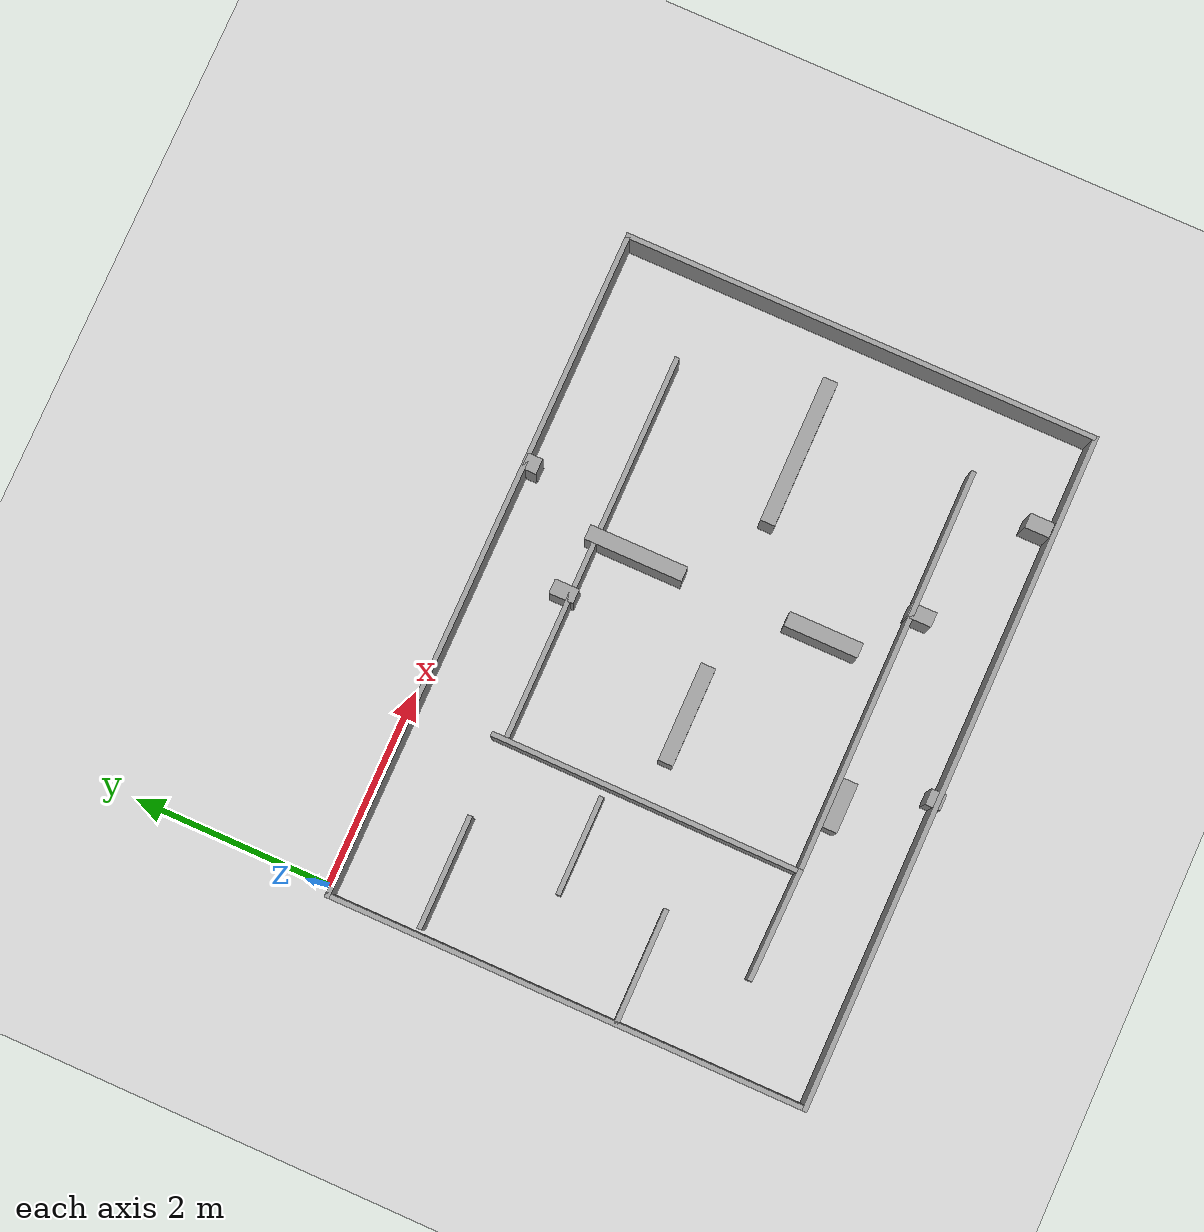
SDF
<sdf version="1.6">
 <world name="default">
  <light name="sun" type="directional">
   <pose>0 0 10 0 -0 0</pose>
   <diffuse>0.8 0.8 0.8 1</diffuse>
   <specular>0.2 0.2 0.2 1</specular>
   <attenuation>
    <range>1000</range>
    <constant>0.9</constant>
    <linear>0.01</linear>
    <quadratic>0.001</quadratic>
   </attenuation>
   <direction>-0.5 0.1 -0.9</direction>
  </light>
  <model name="ground_plane">
   <static>1</static>
   <link name="link">
    <collision name="collision">
     <geometry><plane><normal>0 0 1</normal><size>100 100</size></plane></geometry>
     <surface><friction><ode><mu>100</mu><mu2>50</mu2></ode></friction></surface>
    </collision>
    <visual name="visual">
     <cast_shadows>0</cast_shadows>
     <geometry><plane><normal>0 0 1</normal><size>100 100</size></plane></geometry>
     <material>
      <script><uri>file://media/materials/scripts/gazebo.material</uri><name>Gazebo/Grey</name></script>
     </material>
    </visual>
   </link>
  </model>
  <gravity>0 0 -9.8</gravity>
  <magnetic_field>6e-06 2.3e-05 -4.2e-05</magnetic_field>
  <atmosphere type="adiabatic"/>
  <physics name="default_physics" default="0" type="ode">
   <max_step_size>0.001</max_step_size>
   <real_time_factor>1</real_time_factor>
   <real_time_update_rate>1000</real_time_update_rate>
  </physics>
  <scene><ambient>0.4 0.4 0.4 1</ambient><background>0.7 0.7 0.7 1</background><shadows>1</shadows></scene>
  <spherical_coordinates>
   <surface_model>EARTH_WGS84</surface_model>
   <latitude_deg>0</latitude_deg>
   <longitude_deg>0</longitude_deg>
   <elevation>0</elevation>
   <heading_deg>0</heading_deg>
  </spherical_coordinates>
  <model name="new_nav">
   <pose>3.3495 -2.50747 0 0 -0 0</pose>
   <link name="Wall_0">
    <collision name="Wall_0_Collision">
     <geometry><box><size>4.85977 0.05 0.5</size></box></geometry>
     <pose>0 0 0.25 0 -0 0</pose>
    </collision>
    <visual name="Wall_0_Visual">
     <pose>0 0 0.25 0 -0 0</pose>
     <geometry><box><size>4.85977 0.05 0.5</size></box></geometry>
     <material>
      <script><uri>file://media/materials/scripts/gazebo.material</uri><name>Gazebo/Grey</name></script>
      <ambient>1 1 1 1</ambient>
     </material>
     <meta><layer>0</layer></meta>
    </visual>
    <pose>-3.4295 0.024586 0 0 0 -1.5708</pose>
   </link>
   <link name="Wall_10">
    <collision name="Wall_10_Collision">
     <geometry><box><size>1 0.05 0.5</size></box></geometry>
     <pose>0 0 0.25 0 -0 0</pose>
    </collision>
    <visual name="Wall_10_Visual">
     <pose>0 0 0.25 0 -0 0</pose>
     <geometry><box><size>1 0.05 0.5</size></box></geometry>
     <material>
      <script><uri>file://media/materials/scripts/gazebo.material</uri><name>Gazebo/Grey</name></script>
      <ambient>1 1 1 1</ambient>
     </material>
     <meta><layer>0</layer></meta>
    </visual>
    <pose>-2.06089 0.477386 0 0 -0 3.14159</pose>
   </link>
   <link name="Wall_12">
    <collision name="Wall_12_Collision">
     <geometry><box><size>1.15046 0.05 0.5</size></box></geometry>
     <pose>0 0 0.25 0 -0 0</pose>
    </collision>
    <visual name="Wall_12_Visual">
     <pose>0 0 0.25 0 -0 0</pose>
     <geometry><box><size>1.15046 0.05 0.5</size></box></geometry>
     <material>
      <script><uri>file://media/materials/scripts/gazebo.material</uri><name>Gazebo/Grey</name></script>
      <ambient>1 1 1 1</ambient>
     </material>
     <meta><layer>0</layer></meta>
    </visual>
    <pose>-2.8455 -0.496527 0 0 -0 0</pose>
   </link>
   <link name="Wall_14">
    <collision name="Wall_14_Collision">
     <geometry><box><size>1.13722 0.05 0.5</size></box></geometry>
     <pose>0 0 0.25 0 -0 0</pose>
    </collision>
    <visual name="Wall_14_Visual">
     <pose>0 0 0.25 0 -0 0</pose>
     <geometry><box><size>1.13722 0.05 0.5</size></box></geometry>
     <material>
      <script><uri>file://media/materials/scripts/gazebo.material</uri><name>Gazebo/Grey</name></script>
      <ambient>1 1 1 1</ambient>
     </material>
     <meta><layer>0</layer></meta>
    </visual>
    <pose>-1.996 -1.47653 0 0 -0 3.12136</pose>
   </link>
   <link name="Wall_16">
    <collision name="Wall_16_Collision">
     <geometry><box><size>4.14977 0.05 0.5</size></box></geometry>
     <pose>0 0 0.25 0 -0 0</pose>
    </collision>
    <visual name="Wall_16_Visual">
     <pose>0 0 0.25 0 -0 0</pose>
     <geometry><box><size>4.14977 0.05 0.5</size></box></geometry>
     <material>
      <script><uri>file://media/materials/scripts/gazebo.material</uri><name>Gazebo/Grey</name></script>
      <ambient>1 1 1 1</ambient>
     </material>
     <meta><layer>0</layer></meta>
    </visual>
    <pose>0.597503 -1.48753 0 0 -0 0</pose>
   </link>
   <link name="Wall_18">
    <collision name="Wall_18_Collision">
     <geometry><box><size>0.16 0.15 0.5</size></box></geometry>
     <pose>0 0 0.25 0 -0 0</pose>
    </collision>
    <visual name="Wall_18_Visual">
     <pose>0 0 0.25 0 -0 0</pose>
     <geometry><box><size>0.16 0.15 0.5</size></box></geometry>
     <material>
      <script><uri>file://media/materials/scripts/gazebo.material</uri><name>Gazebo/Grey</name></script>
      <ambient>1 1 1 1</ambient>
     </material>
     <meta><layer>0</layer></meta>
    </visual>
    <pose>-0.325497 -2.37953 0 0 -0 0</pose>
   </link>
   <link name="Wall_2">
    <collision name="Wall_2_Collision">
     <geometry><box><size>6.90872 0.05 0.5</size></box></geometry>
     <pose>0 0 0.25 0 -0 0</pose>
    </collision>
    <visual name="Wall_2_Visual">
     <pose>0 0 0.25 0 -0 0</pose>
     <geometry><box><size>6.90872 0.05 0.5</size></box></geometry>
     <material>
      <script><uri>file://media/materials/scripts/gazebo.material</uri><name>Gazebo/Grey</name></script>
      <ambient>1 1 1 1</ambient>
     </material>
     <meta><layer>0</layer></meta>
    </visual>
    <pose>-0.000149 -2.40781 0 0 0 -0.002155</pose>
   </link>
   <link name="Wall_21">
    <collision name="Wall_21_Collision">
     <geometry><box><size>0.25 0.15 0.5</size></box></geometry>
     <pose>0 0 0.25 0 -0 0</pose>
    </collision>
    <visual name="Wall_21_Visual">
     <pose>0 0 0.25 0 -0 0</pose>
     <geometry><box><size>0.25 0.15 0.5</size></box></geometry>
     <material>
      <script><uri>file://media/materials/scripts/gazebo.material</uri><name>Gazebo/Grey</name></script>
      <ambient>1 1 1 1</ambient>
     </material>
     <meta><layer>0</layer></meta>
    </visual>
    <pose>1.2175 -1.57553 0 0 -0 1.5708</pose>
   </link>
   <link name="Wall_23">
    <collision name="Wall_23_Collision">
     <geometry><box><size>0.25 0.15 0.5</size></box></geometry>
     <pose>0 0 0.25 0 -0 0</pose>
    </collision>
    <visual name="Wall_23_Visual">
     <pose>0 0 0.25 0 -0 0</pose>
     <geometry><box><size>0.25 0.15 0.5</size></box></geometry>
     <material>
      <script><uri>file://media/materials/scripts/gazebo.material</uri><name>Gazebo/Grey</name></script>
      <ambient>1 1 1 1</ambient>
     </material>
     <meta><layer>0</layer></meta>
    </visual>
    <pose>2.4475 -2.25753 0 0 0 -1.5708</pose>
   </link>
   <link name="Wall_27">
    <collision name="Wall_27_Collision">
     <geometry><box><size>0.5 0.15 0.5</size></box></geometry>
     <pose>0 0 0.25 0 -0 0</pose>
    </collision>
    <visual name="Wall_27_Visual">
     <pose>0 0 0.25 0 -0 0</pose>
     <geometry><box><size>0.5 0.15 0.5</size></box></geometry>
     <material>
      <script><uri>file://media/materials/scripts/gazebo.material</uri><name>Gazebo/Grey</name></script>
      <ambient>1 1 1 1</ambient>
     </material>
     <meta><layer>0</layer></meta>
    </visual>
    <pose>-0.737497 -1.58553 0 0 -0 0</pose>
   </link>
   <link name="Wall_3">
    <collision name="Wall_3_Collision">
     <geometry><box><size>4.85956 0.05 0.5</size></box></geometry>
     <pose>0 0 0.25 0 -0 0</pose>
    </collision>
    <visual name="Wall_3_Visual">
     <pose>0 0 0.25 0 -0 0</pose>
     <geometry><box><size>4.85956 0.05 0.5</size></box></geometry>
     <material>
      <script><uri>file://media/materials/scripts/gazebo.material</uri><name>Gazebo/Grey</name></script>
      <ambient>1 1 1 1</ambient>
     </material>
     <meta><layer>0</layer></meta>
    </visual>
    <pose>3.42935 0.009695 0 0 -0 1.57073</pose>
   </link>
   <link name="Wall_30">
    <collision name="Wall_30_Collision">
     <geometry><box><size>4 0.05 0.5</size></box></geometry>
     <pose>0 0 0.25 0 -0 0</pose>
    </collision>
    <visual name="Wall_30_Visual">
     <pose>0 0 0.25 0 -0 0</pose>
     <geometry><box><size>4 0.05 0.5</size></box></geometry>
     <material>
      <script><uri>file://media/materials/scripts/gazebo.material</uri><name>Gazebo/Grey</name></script>
      <ambient>1 1 1 1</ambient>
     </material>
     <meta><layer>0</layer></meta>
    </visual>
    <pose>0.538503 1.51147 0 0 -0 3.14159</pose>
   </link>
   <link name="Wall_32">
    <collision name="Wall_32_Collision">
     <geometry><box><size>0.16 0.15 0.5</size></box></geometry>
     <pose>0 0 0.25 0 -0 0</pose>
    </collision>
    <visual name="Wall_32_Visual">
     <pose>0 0 0.25 0 -0 0</pose>
     <geometry><box><size>0.16 0.15 0.5</size></box></geometry>
     <material>
      <script><uri>file://media/materials/scripts/gazebo.material</uri><name>Gazebo/Grey</name></script>
      <ambient>1 1 1 1</ambient>
     </material>
     <meta><layer>0</layer></meta>
    </visual>
    <pose>1.0475 2.35347 0 0 -0 0</pose>
   </link>
   <link name="Wall_34">
    <collision name="Wall_34_Collision">
     <geometry><box><size>0.25 0.15 0.5</size></box></geometry>
     <pose>0 0 0.25 0 -0 0</pose>
    </collision>
    <visual name="Wall_34_Visual">
     <pose>0 0 0.25 0 -0 0</pose>
     <geometry><box><size>0.25 0.15 0.5</size></box></geometry>
     <material>
      <script><uri>file://media/materials/scripts/gazebo.material</uri><name>Gazebo/Grey</name></script>
      <ambient>1 1 1 1</ambient>
     </material>
     <meta><layer>0</layer></meta>
    </visual>
    <pose>0.059503 1.58147 0 0 0 -1.5708</pose>
   </link>
   <link name="Wall_36">
    <collision name="Wall_36_Collision">
     <geometry><box><size>0.75 0.15 0.5</size></box></geometry>
     <pose>0 0 0.25 0 -0 0</pose>
    </collision>
    <visual name="Wall_36_Visual">
     <pose>0 0 0.25 0 -0 0</pose>
     <geometry><box><size>0.75 0.15 0.5</size></box></geometry>
     <material>
      <script><uri>file://media/materials/scripts/gazebo.material</uri><name>Gazebo/Grey</name></script>
      <ambient>1 1 1 1</ambient>
     </material>
     <meta><layer>0</layer></meta>
    </visual>
    <pose>0.671503 -0.808527 0 0 -0 1.5708</pose>
   </link>
   <link name="Wall_38">
    <collision name="Wall_38_Collision">
     <geometry><box><size>1 0.15 0.5</size></box></geometry>
     <pose>0 0 0.25 0 -0 0</pose>
    </collision>
    <visual name="Wall_38_Visual">
     <pose>0 0 0.25 0 -0 0</pose>
     <geometry><box><size>1 0.15 0.5</size></box></geometry>
     <material>
      <script><uri>file://media/materials/scripts/gazebo.material</uri><name>Gazebo/Grey</name></script>
      <ambient>1 1 1 1</ambient>
     </material>
     <meta><layer>0</layer></meta>
    </visual>
    <pose>0.665503 1.11147 0 0 -0 1.5708</pose>
   </link>
   <link name="Wall_4">
    <collision name="Wall_4_Collision">
     <geometry><box><size>6.90902 0.05 0.5</size></box></geometry>
     <pose>0 0 0.25 0 -0 0</pose>
    </collision>
    <visual name="Wall_4_Visual">
     <pose>0 0 0.25 0 -0 0</pose>
     <geometry><box><size>6.90902 0.05 0.5</size></box></geometry>
     <material>
      <script><uri>file://media/materials/scripts/gazebo.material</uri><name>Gazebo/Grey</name></script>
      <ambient>1 1 1 1</ambient>
     </material>
     <meta><layer>0</layer></meta>
    </visual>
    <pose>3e-06 2.42197 0 0 -0 3.13941</pose>
   </link>
   <link name="Wall_40">
    <collision name="Wall_40_Collision">
     <geometry><box><size>1 0.15 0.5</size></box></geometry>
     <pose>0 0 0.25 0 -0 0</pose>
    </collision>
    <visual name="Wall_40_Visual">
     <pose>0 0 0.25 0 -0 0</pose>
     <geometry><box><size>1 0.15 0.5</size></box></geometry>
     <material>
      <script><uri>file://media/materials/scripts/gazebo.material</uri><name>Gazebo/Grey</name></script>
      <ambient>1 1 1 1</ambient>
     </material>
     <meta><layer>0</layer></meta>
    </visual>
    <pose>-0.535497 0.060473 0 0 -0 3.14159</pose>
   </link>
   <link name="Wall_42">
    <collision name="Wall_42_Collision">
     <geometry><box><size>1.5 0.15 0.5</size></box></geometry>
     <pose>0 0 0.25 0 -0 0</pose>
    </collision>
    <visual name="Wall_42_Visual">
     <pose>0 0 0.25 0 -0 0</pose>
     <geometry><box><size>1.5 0.15 0.5</size></box></geometry>
     <material>
      <script><uri>file://media/materials/scripts/gazebo.material</uri><name>Gazebo/Grey</name></script>
      <ambient>1 1 1 1</ambient>
     </material>
     <meta><layer>0</layer></meta>
    </visual>
    <pose>2.1785 0.095473 0 0 -0 0</pose>
   </link>
   <link name="Wall_6">
    <collision name="Wall_6_Collision">
     <geometry><box><size>1.14998 0.05 0.5</size></box></geometry>
     <pose>0 0 0.25 0 -0 0</pose>
    </collision>
    <visual name="Wall_6_Visual">
     <pose>0 0 0.25 0 -0 0</pose>
     <geometry><box><size>1.14998 0.05 0.5</size></box></geometry>
     <material>
      <script><uri>file://media/materials/scripts/gazebo.material</uri><name>Gazebo/Grey</name></script>
      <ambient>1 1 1 1</ambient>
     </material>
     <meta><layer>0</layer></meta>
    </visual>
    <pose>-2.7935 1.52347 0 0 -0 0</pose>
   </link>
   <link name="Wall_8">
    <collision name="Wall_8_Collision">
     <geometry><box><size>3.17203 0.05 0.5</size></box></geometry>
     <pose>0 0 0.25 0 -0 0</pose>
    </collision>
    <visual name="Wall_8_Visual">
     <pose>0 0 0.25 0 -0 0</pose>
     <geometry><box><size>3.17203 0.05 0.5</size></box></geometry>
     <material>
      <script><uri>file://media/materials/scripts/gazebo.material</uri><name>Gazebo/Grey</name></script>
      <ambient>1 1 1 1</ambient>
     </material>
     <meta><layer>0</layer></meta>
    </visual>
    <pose>-1.446 0.073473 0 0 0 -1.57496</pose>
   </link>
   <static>1</static>
  </model>
 </world>
</sdf>
